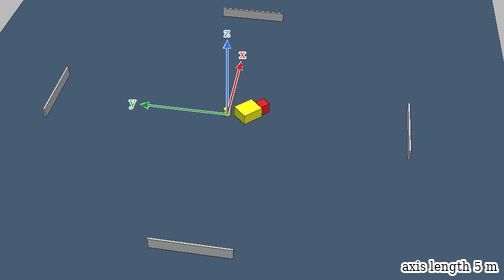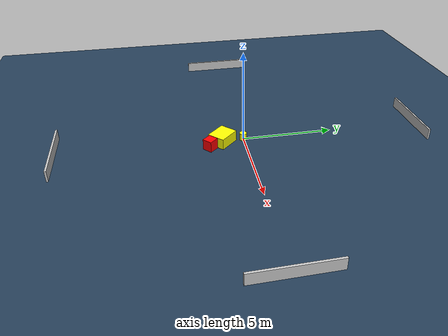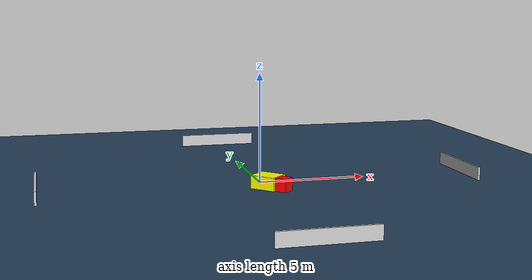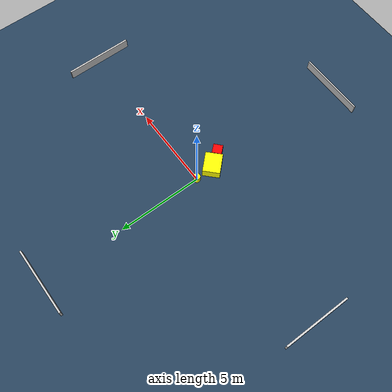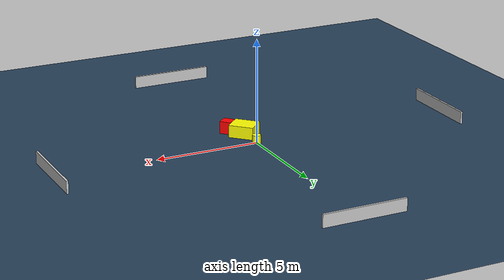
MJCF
<?xml version="1.0" ?>
<mujoco model="generated_environment">
  <option timestep="0.01" integrator="RK4" cone="elliptic"/>
  <default>
    <geom density="1"/>
  </default>
  <asset>
    <texture builtin="gradient" height="3072" name="skybox" rgb1="0.3 0.5 0.7" rgb2="0 0 0" type="skybox" width="512"/>
    <texture builtin="checker" height="300" name="groundplane" rgb1="0.2 0.3 0.4" rgb2="0.1 0.2 0.3" type="2d" width="300"/>
    <material name="groundplane" reflectance="0.2" texrepeat="5 5" texture="groundplane"/>
  </asset>
  <worldbody>
    <light dir="0 0 -1" directional="true" pos="0 0 1.5"/>
    <geom condim="3" friction="0.5 0.005 0.001" material="groundplane" name="floor" pos="0 0 0" size="0 0 0.05" type="plane"/>
    <body name="walls">
      <geom name="wall_1" condim="4" pos="-10.0 0.0 0.3" rgba="0.800000011920929 0.800000011920929 0.800000011920929 1.0" size="0.05 2.0 0.3" type="box"/>
      <geom name="wall_2" condim="4" pos="10.0 0.0 0.3" rgba="0.800000011920929 0.800000011920929 0.800000011920929 1.0" size="0.05 2.0 0.3" type="box"/>
      <geom name="wall_3" condim="4" pos="0.0 -10.0 0.3" rgba="0.800000011920929 0.800000011920929 0.800000011920929 1.0" size="2.0 0.05 0.3" type="box"/>
      <geom name="wall_4" condim="4" pos="0.0 10.0 0.3" rgba="0.800000011920929 0.800000011920929 0.800000011920929 1.0" size="2.0 0.05 0.3" type="box"/>
    </body>
    <body name="robot">
      <joint name="joint_x" type="slide" pos="0 0 0" axis="1 0 0"/>
      <joint name="joint_y" type="slide" pos="0 0 0" axis="0 1 0"/>
      <geom name="robot" type="cylinder" pos="0.0 0.0 0.2" size="0.2 0.2 0.0" mass="5.0" friction="1.0 0.005 0.0001" condim="4" rgba="1.0 1.0 0.0 1.0"/>
    </body>
    <body name="obstacle_1_movable">
      <geom name="obstacle_1_movable" condim="4" pos="0.07948987213738556 -1.1609557518528963 0.3" euler="0 0 224.12272725160852" friction="0.0 0.005 0.001" rgba="1.0 1.0 0.0 1.0" size="0.49673922833196893 0.6018198239455256 0.3" type="box" mass="0.1"/>
      <joint type="free"/>
    </body>
    <body name="obstacle_2_static">
      <geom name="obstacle_2_static" condim="4" pos="0.6036262304689328 -1.8961633680691332 0.3" euler="0 0 131.9015802167679" friction="0.0 0.005 0.001" rgba="1.0 0.0 0.0 1.0" size="0.2780795369387243 0.2752569026120673 0.3" type="box"/>
    </body>
  </worldbody>
  <actuator>
    <motor name="actuator_x" joint="joint_x" gear="1" ctrlrange="-1 1"/>
    <motor name="actuator_y" joint="joint_y" gear="1" ctrlrange="-1 1"/>
  </actuator>
</mujoco>
